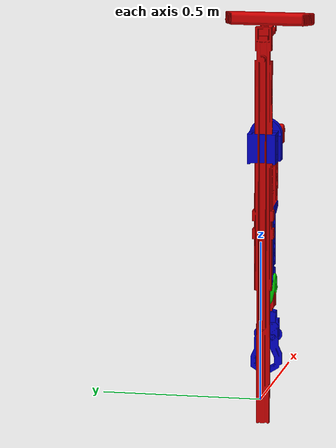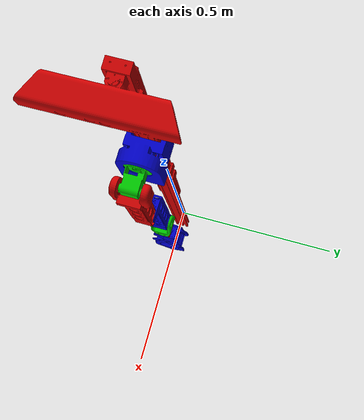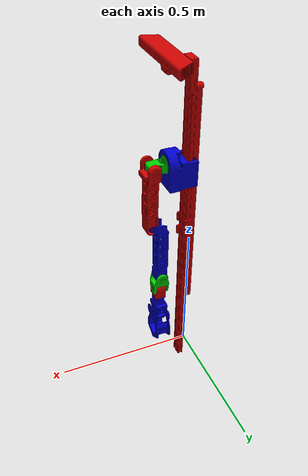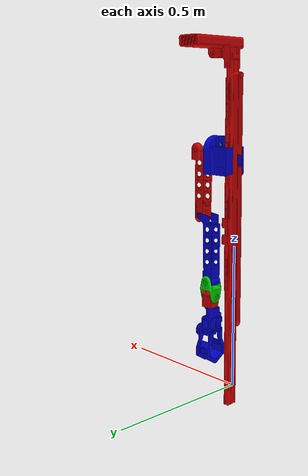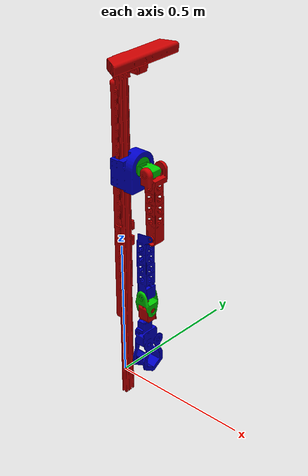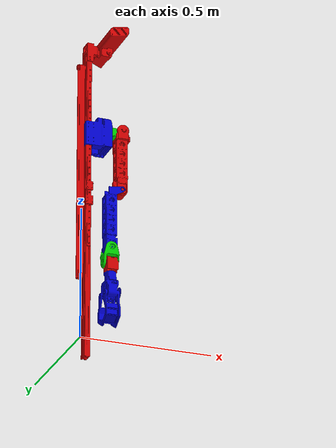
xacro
<?xml version="1.0"?>
<robot name="manipulator" xmlns:xacro="http://www.ros.org/wiki/xacro">

	<!--Constants for robot dimensions -->
	<xacro:property name="PI" value="3.1415926535897931" />

	<!-- Import Rviz color -->
	<xacro:include filename="$(find hir_description)/urdf/materials.xacro" />

	<!-- import empty link -->
	<link name="world"/>
	<link name="base_link">
		<visual>
			<origin xyz="0.04 0 0.8" rpy="1.5707 0 1.5707" />
			<geometry>
				<mesh filename="package://hir_description/meshes/STL/pole.stl" />
			</geometry>
			<material name="red" />
		</visual>
		<collision>
			<origin xyz="0 0 0" rpy="0 0 0" />
			<geometry>
				<box size="0.0330 0.0520 1.1" />
			</geometry>
		</collision>
		<inertial>
			<mass value="0.5" />
			<origin xyz="0 0 0" />
			<inertia ixx="1.0" ixy="0.0" ixz="0.0" iyy="1.0" iyz="0.0" izz="1.0" />
		</inertial>
	</link>
	<joint name="world2base" type="fixed">
		<origin xyz="0 0 0" rpy="0 0 0" />
		<parent link="world"/>
		<child link="base_link"/>
	</joint>

	<!-- Import arm parts -->
	<xacro:include filename="$(find hir_description)/urdf/manipulator/manipulator.urdf.xacro"/>

</robot>

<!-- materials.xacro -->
<robot xmlns:xacro="http://www.ros.org/wiki/xacro">

	<xacro:macro name="default_color" params="name color">
		<material name="${name}">
			<color rgba="${color}" />
		</material>
	</xacro:macro>

	<xacro:default_color name="black" color="0.0 0.0 0.0 1.0" />
	<xacro:default_color name="blue" color="0.0 0.0 0.8 1.0" />
	<xacro:default_color name="green" color="0.0 0.8 0.0 1.0" />
	<xacro:default_color name="grey" color="0.2 0.2 0.2 1.0" />
	<xacro:default_color name="orange" color="${255/255} ${108/255} ${10/255} 1.0" />
	<xacro:default_color name="brown" color="${255/255} ${207/255} ${195/255} 1.0" />
	<xacro:default_color name="red" color="0.8 0.0 0.0 1.0" />
	<xacro:default_color name="white" color="1.0 1.0 1.0 1.0" />

</robot>

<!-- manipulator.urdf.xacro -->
<robot xmlns:xacro="http://www.ros.org/wiki/xacro">

	<!-- import gazebo files -->
	<xacro:include filename="$(find hir_description)/urdf/manipulator/manipulator.gazebo.xacro" />

	<!-- import transmission -->
	<xacro:include filename="$(find hir_description)/urdf/manipulator/manipulator.transmission.xacro" />

  <!-- joint 0 -->
  <joint name="shoulder_slider" type="prismatic">
    <origin xyz="0.01 0 0.79" rpy="0 0 -1.5707"/>
    <parent link="base_link"/>
    <child link="shoulder_link"/>
    <axis xyz="0 0 1"/>
    <limit effort="1000" lower="0" upper="0.4" velocity="1.0"/>
  </joint>

  <link name="shoulder_link">
    <inertial>
      <mass value="0.5"/>
      <origin xyz="0 0 0"/>
      <inertia ixx="1.0" ixy="0.0" ixz="0.0" iyy="1.0" iyz="0.0" izz="1.0"/>
    </inertial>
    <visual>
      <origin xyz="0 0.035 0" rpy="1.5707 0 3.1415"/>
      <geometry>
		<mesh filename="package://hir_description/meshes/STL/joint0.stl" />
      </geometry>
      <material name="blue">
        <color rgba="0 0 .8 1"/>
      </material>
    </visual>
    <collision>
      <origin xyz="0 0.035 0" rpy="1.5707 0 3.1415"/>
      <geometry>
        <box size="0.0330 0.28 0.0320"/>
      </geometry>
    </collision>
  </link>

  <!-- joint 1 -->
  <joint name="shoulder_roll_joint" type="revolute">
    <origin xyz="0 0.1 0.03" rpy="0 0 0"/>
    <parent link="shoulder_link"/>
    <child link="shoulder_roll_link"/>
    <axis xyz="0 1 0"/>
    <limit lower="-1" upper="1" effort="30" velocity="1.571"/>
  </joint>

  <link name="shoulder_roll_link">
    <inertial>
      <mass value="0.5"/>
      <origin xyz="0 0 0"/>
      <inertia ixx="1.0" ixy="0.0" ixz="0.0" iyy="1.0" iyz="0.0" izz="1.0"/>
    </inertial>
    <visual>
      <origin xyz="0 0 0" rpy="1.5707 1.5707 0"/>
      <geometry>
		<mesh filename="package://hir_description/meshes/STL/joint1.stl" />
      </geometry>
      <material name="green"/>
    </visual>
    <collision>
      <origin xyz="0 0 0" rpy="1.5707 1.5707 0"/>
      <geometry>
        <box size="0.0330 0.05 0.0320"/>
      </geometry>
    </collision>
  </link>

  <!-- joint 2 -->
  <joint name="shoulder_pitch_joint" type="revolute">
    <origin xyz="0 0.04 0" rpy="0 0 0"/>
    <parent link="shoulder_roll_link"/>
    <child link="shoulder_pitch_link"/>
    <axis xyz="1.0 0.001 0.0"/>
    <limit lower="0" upper="3.14" effort="30" velocity="1.571"/>
  </joint>

  <link name="shoulder_pitch_link">
    <inertial>
      <mass value="0.5"/>
      <origin xyz="0 0 0"/>
      <inertia ixx="1.0" ixy="0.0" ixz="0.0" iyy="1.0" iyz="0.0" izz="1.0"/>
    </inertial>
    <visual>
      <origin xyz="0 0 -0.1" rpy="3.1415 0 1.5707"/>
      <geometry>
		<mesh filename="package://hir_description/meshes/STL/joint2.stl" />
      </geometry>
      <material name="red"/>
    </visual>
    <collision>
      <origin xyz="0 0 -0.1" rpy="3.1415 0 1.5707"/>
      <geometry>
        <box size="0.0330 0.0320 0.180"/>
      </geometry>
    </collision>
  </link>

  <!-- joint 3 -->
  <joint name="elbow_pitch_joint" type="revolute">
    <origin xyz="0 0.001 -0.224" rpy="0 0 0"/>
    <parent link="shoulder_pitch_link"/>
    <child link="elbow_pitch_link"/>
    <axis xyz="1 0 0"/>
    <limit lower="0" upper="3.0" effort="30" velocity="1.571"/>
  </joint>

  <link name="elbow_pitch_link">
    <inertial>
      <mass value="0.5"/>
      <origin xyz="0 0 0"/>
      <inertia ixx="1.0" ixy="0.0" ixz="0.0" iyy="1.0" iyz="0.0" izz="1.0"/>
    </inertial>
    <visual>
      <origin xyz=" 0 -0.035 -0.12 " rpy="3.1415 0 -1.5707"/>
      <geometry>
		<mesh filename="package://hir_description/meshes/STL/joint3.stl" />
	  </geometry>
      <material name="blue"/>
    </visual>
    <collision>
      <origin xyz=" 0 -0.035 -0.12 " rpy="3.1415 0 -1.5707"/>
      <geometry>
        <box size="0.0330 0.0320 0.180"/>
      </geometry>
    </collision>
  </link>

  <!-- joint 4 -->
  <joint name="wrist_pitch_joint" type="revolute">
    <origin xyz="0 -0.04 -0.239" rpy="0 0 0"/>
    <parent link="elbow_pitch_link"/>
    <child link="wrist_pitch_link"/>
    <axis xyz="1.0 0.001 0.0"/>
    <limit lower="-1.57" upper="1.57" effort="30" velocity="1.571"/>
  </joint>

  <link name="wrist_pitch_link">
    <inertial>
      <mass value="0.5"/>
      <origin xyz="0 0 0"/>
      <inertia ixx="1.0" ixy="0.0" ixz="0.0" iyy="1.0" iyz="0.0" izz="1.0"/>
    </inertial>
    <visual>
      <origin xyz=" 0 0 -0.026 " rpy="0 0 0"/>
      <geometry>
		<mesh filename="package://hir_description/meshes/STL/joint4.stl" />
	  </geometry>
      <material name="green"/>
    </visual>
    <collision>
      <origin xyz=" 0 0 -0.026 " rpy="0 0 0"/>
      <geometry>
        <box size="0.0330 0.0320 0.0320"/>
      </geometry>
    </collision>
  </link>

  <!-- joint 5 -->
  <joint name="wrist_yaw_joint" type="revolute">
    <origin xyz="0 0 -0.0525" rpy="0 0 0"/>
    <parent link="wrist_pitch_link"/>
    <child link="wrist_yaw_link"/>
    <axis xyz="0 1 0"/>
    <limit lower="-1.57" upper="1.57" effort="30" velocity="1.571"/>
  </joint>

  <link name="wrist_yaw_link">
    <inertial>
      <mass value="0.5"/>
      <origin xyz="0 0 0"/>
      <inertia ixx="1.0" ixy="0.0" ixz="0.0" iyy="1.0" iyz="0.0" izz="1.0"/>
    </inertial>
    <visual>
      <origin xyz="0 0 -0.016" rpy="-1.5707 0 0"/>
      <geometry>
		<mesh filename="package://hir_description/meshes/STL/joint5.stl"/>
	  </geometry>
      <material name="red"/>
    </visual>
    <collision>
      <origin xyz="0 0 -0.016" rpy="-1.5707 0 0"/>
      <geometry>
        <box size="0.0330 0.0320 0.0320"/>
      </geometry>
    </collision>
  </link>

  <!--joint 6 + hand -->
  <joint name="wrist_roll_joint" type="revolute">
    <origin xyz="0 0 -0.05" rpy="0 0 0"/>
    <parent link="wrist_yaw_link"/>
    <child link="wrist_roll_link"/>
    <axis xyz="0 0.01 1.0"/>
    <limit lower="-1.57" upper="1.57" effort="30" velocity="1.571"/>
  </joint>

  <link name="wrist_roll_link">
    <inertial>
      <mass value="0.5"/>
      <origin xyz="0 0 0"/>
      <inertia ixx="1.0" ixy="0.0" ixz="0.0" iyy="1.0" iyz="0.0" izz="1.0"/>
    </inertial>
    <visual>
      <origin xyz="0 0 -0.075" rpy="0 0 0"/>
      <geometry>
		<mesh filename="package://hir_description/meshes/STL/joint6.stl" />
	  </geometry>
      <material name="blue"/>
    </visual>
    <collision>
      <origin xyz="0 0 -0.075" rpy="0 0 0"/>
      <geometry>
        <box size="0.0330 0.0320 0.0320"/>
      </geometry>
    </collision>
  </link>

</robot>
